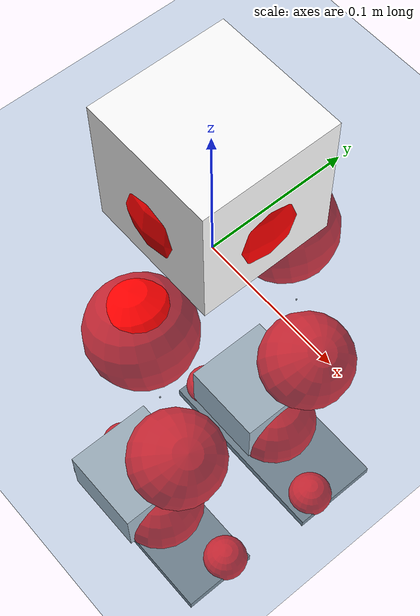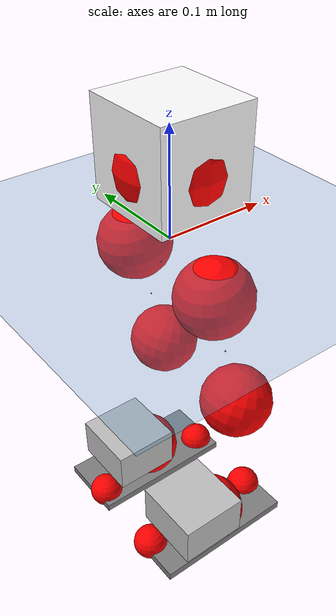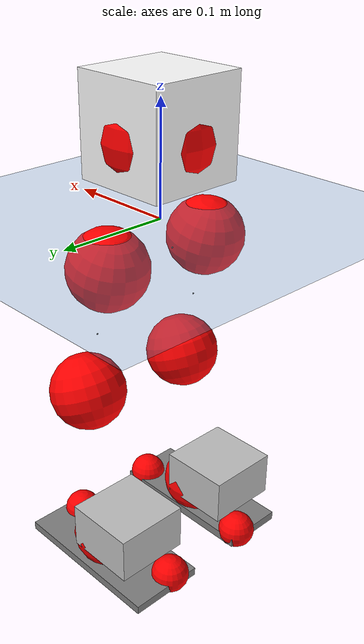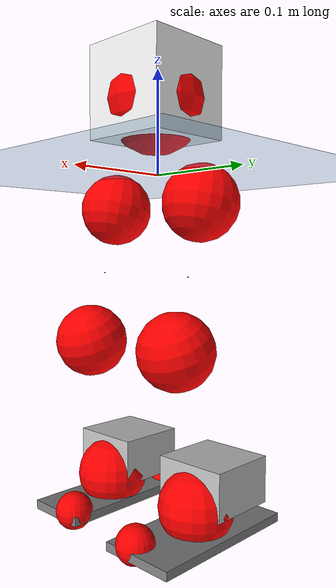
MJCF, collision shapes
<mujoco model="pi_12dof_release_v1">
  <compiler angle="radian" assetdir="assets" balanceinertia="true" inertiafromgeom="false"/>

  <option timestep="0.005" density="1.2" viscosity="2e-05"/>

  <size nkey="1"/>

  <visual>
    <quality shadowsize="8192"/>
    <map shadowclip="0.5"/>
  </visual>

  <default>
    <default class="/">
      <joint armature="0.01" damping="0.01" frictionloss="0.01"/>
      <geom contype="0" conaffinity="0" group="1" solref="-1000 -80"/>
      <site size="0.01 0.005 0.005" group="5"/>
      <general forcelimited="true" biastype="affine" gainprm="20" biasprm="0 -20 -0.5"/>
      <default class="foot">
        <geom size="0.0845 0.036 0.005" type="box" condim="6" group="4" priority="1" friction="0.9 0.2 0.2" solimp="0.015 1 0.005"/>
      </default>
      <default class="reward_collision_sphere">
        <geom group="5" rgba="1 0 0 1"/>
      </default>
    </default>
  </default>

  <asset>
    <texture type="skybox" colorspace="auto" name="//unnamed_texture_0" builtin="gradient" rgb1="0.95 0.95 0.95" rgb2="0.95 0.95 0.95" width="100" height="600"/>
    <texture type="2d" colorspace="auto" name="texplane" builtin="checker" rgb1="0.345 0.575 0.748" rgb2="0.345 0.575 0.748" markrgb="1 1 1" width="512" height="512"/>
    <material name="MatPlane" class="/" texture="texplane" texuniform="true" texrepeat="2 2" specular="0.9"/>
    <mesh name="baselink_1" class="/" file="baselink_1.STL"/>
    <mesh name="r_hip_pitch_link" class="/" file="r_hip_pitch_link.STL"/>
    <mesh name="r_hip_roll_link" class="/" file="r_hip_roll_link.STL"/>
    <mesh name="r_thigh_link" class="/" file="r_thigh_link.STL"/>
    <mesh name="r_calf_link" class="/" file="r_calf_link.STL"/>
    <mesh name="r_ankle_pitch_link" class="/" file="r_ankle_pitch_link.STL"/>
    <mesh name="r_ankle_roll_link" class="/" file="r_ankle_roll_link.STL"/>
    <mesh name="l_hip_pitch_link" class="/" file="l_hip_pitch_link.STL"/>
    <mesh name="l_hip_roll_link" class="/" file="l_hip_roll_link.STL"/>
    <mesh name="l_thigh_link" class="/" file="l_thigh_link.STL"/>
    <mesh name="l_calf_link" class="/" file="l_calf_link.STL"/>
    <mesh name="l_ankle_pitch_link" class="/" file="l_ankle_pitch_link.STL"/>
    <mesh name="l_ankle_roll_link" class="/" file="l_ankle_roll_link.STL"/>
  </asset>

  <worldbody>
    <geom name="floor" class="/" size="100 100 0.125" type="plane" group="0" material="MatPlane"/>
    <light name="toplight_shadow" class="/" pos="0 0 5" dir="0.0990148 0.0990148 -0.990148" type="directional" ambient="0.04 0.04 0.04" diffuse="0.55 0.55 0.55" specular="0.12 0.12 0.12"/>
    <light name="toplight_fill" class="/" pos="0 0 5" dir="0.0990148 0.0990148 -0.990148" type="directional" castshadow="false" ambient="0.04 0.04 0.04" diffuse="0.3 0.3 0.3" specular="0.08 0.08 0.08"/>
    <body name="trunk" pos="0.00247143 -0.000538035 0.000502313" quat="0.999999 -0.000276724 3.63339e-07 0.00107458">
      <inertial pos="-0.000206563 -0.00148339 0.0382565" quat="0.694824 0.00932351 0.00786308 0.719076" mass="1.42556" diaginertia="0.00785074 0.00194145 0.0031902"/>
      <joint name="//unnamed_joint_0" type="free"/>
      <geom name="//unnamed_geom_1" class="/" type="mesh" density="0" rgba="1 1 1 1" mesh="baselink_1"/>
      <geom name="//unnamed_geom_2" class="/" size="0.0441456 0.0441456 0.0441456" pos="0 0 0.0762027" type="box" rgba="1 1 1 1"/>
      <geom name="//unnamed_geom_3" class="reward_collision_sphere" size="0.0485602" pos="0 0 0.0666774"/>
      <site name="imu" class="/" pos="-0.00273962 -0.000344068 0.0105088" size="0.00882912"/>
      <camera name="track" class="/" pos="0 -1.47428 0" quat="0.707107 0.707107 0 0" mode="trackcom"/>
      <camera name="ego_camera" class="/" pos="0.0719298 0 0.171456" quat="-0.5 -0.5 0.5 0.5"/>
      <body name="r_hip_pitch_link" pos="-0.000128561 -0.0159129 -0.0315803" quat="0.992185 -6.06169e-05 -0.124774 0.000473022">
        <inertial pos="0.000253762 -0.0427632 -0.000234723" quat="-0.0179627 0.707442 -0.027706 0.706" mass="0.254081" diaginertia="9.00307e-05 2.10966e-05 6.50111e-05"/>
        <joint name="r_hip_pitch_joint" class="/" pos="0 0 0" axis="0.00261444 -0.999989 0.00377559" range="-1.74181 1.25034" armature="0.00919834" damping="0.0213349" frictionloss="0.00934224"/>
        <geom name="//unnamed_geom_4" class="/" type="mesh" density="0" rgba="0.75294 0.75294 0.75294 1" mesh="r_hip_pitch_link"/>
        <geom name="//unnamed_geom_5" class="/" size="0.000441456 0.000441456 0.000441456" type="box" rgba="0.75294 0.75294 0.75294 1"/>
        <body name="r_hip_roll_link" pos="0.000124746 -0.0405499 0.000631429" quat="1 -0.00079558 -8.52247e-05 -0.000164297">
          <inertial pos="0.000131546 -0.000845381 -0.0606912" quat="0.705991 -0.079443 -0.0827379 0.698871" mass="0.262128" diaginertia="0.000266141 6.01097e-05 0.000102444"/>
          <joint name="r_hip_roll_joint" class="/" pos="0 0 0" axis="-0.999982 -0.00513559 -0.00313039" stiffness="0.00190235" range="-0.102717 0.47609" armature="0.00919786" damping="0" frictionloss="0.00958071"/>
          <geom name="//unnamed_geom_6" class="/" type="mesh" density="0" rgba="0.75294 0.75294 0.75294 1" mesh="r_hip_roll_link"/>
          <geom name="//unnamed_geom_7" class="/" size="0.000441456 0.000441456 0.000441456" type="box" rgba="0.75294 0.75294 0.75294 1"/>
          <geom name="//unnamed_geom_8" class="reward_collision_sphere" size="0.0353165"/>
          <body name="r_thigh_link" pos="-0.00143842 -0.00142051 -0.0649255" quat="1 -7.74949e-05 0.000105168 -0.00012332">
            <inertial pos="-0.0012039 0.0010862 -0.0444551" quat="0.739414 0.673244 -0.00202463 0.00240606" mass="0.0775158" diaginertia="0.000104282 2.139e-05 4.62388e-05"/>
            <joint name="r_thigh_joint" class="/" pos="0 0 0" axis="0.000677992 -0.00285683 -0.999996" range="-0.330951 0.597191" armature="0.00876457" damping="0.00075255" frictionloss="0.00773536"/>
            <geom name="//unnamed_geom_9" class="/" type="mesh" density="0" rgba="0.75294 0.75294 0.75294 1" mesh="r_thigh_link"/>
            <geom name="//unnamed_geom_10" class="/" size="0.000441456 0.000441456 0.000441456" type="box" rgba="0.75294 0.75294 0.75294 1"/>
            <body name="r_calf_link" pos="-0.00142053 -0.00199975 -0.0692991" quat="0.947548 -0.00056886 0.319613 -0.000225311">
              <inertial pos="-0.000808107 -0.00261393 -0.0661017" quat="0.999905 -0.0108359 -0.000188845 0.00847657" mass="0.555286" diaginertia="0.00281183 0.000761329 0.000135827"/>
              <joint name="r_calf_joint" class="/" pos="0 0 0" axis="0.00387969 -0.999983 0.00437224" range="-1.60247 0.639594" armature="0.00888415" damping="0.00659058" frictionloss="0.00939523"/>
              <geom name="//unnamed_geom_11" class="/" type="mesh" density="0" rgba="0.75294 0.75294 0.75294 1" mesh="r_calf_link"/>
              <geom name="//unnamed_geom_12" class="/" size="0.000441456 0.000441456 0.000441456" type="box" rgba="0.75294 0.75294 0.75294 1"/>
              <geom name="//unnamed_geom_13" class="reward_collision_sphere" size="0.0353165"/>
              <body name="r_ankle_pitch_link" pos="-0.000417736 -0.00168798 -0.13359" quat="0.980037 -2.9056e-05 -0.198816 5.85422e-07">
                <inertial pos="0.00459366 0.00137369 -0.000786099" quat="0.00393442 0.705373 -0.00159419 0.708823" mass="0.122373" diaginertia="0.000249338 4.91601e-05 9.64693e-05"/>
                <joint name="r_ankle_pitch_joint" class="/" pos="0 0 0" axis="-0.0102042 -0.999948 -0.000323116" range="-1.31059 0.496961" armature="0.00903883" damping="0.000835746" frictionloss="0.00886218"/>
                <geom name="//unnamed_geom_14" class="/" type="mesh" density="0" rgba="0.75294 0.75294 0.75294 1" mesh="r_ankle_pitch_link"/>
                <geom name="//unnamed_geom_15" class="/" size="0.0344336 0.0353165 0.0220728" type="box" rgba="0.75294 0.75294 0.75294 1"/>
                <body name="r_ankle_roll_link" pos="0.0726298 0.00179952 0.000956592" quat="1 -7.70522e-05 -0.000177601 0.000142249">
                  <inertial pos="-0.0226456 0.000751016 -0.0141625" quat="0.551745 0.435794 0.437142 0.560864" mass="0.355709" diaginertia="0.0009199 0.000224366 0.000219225"/>
                  <joint name="r_ankle_roll_joint" class="/" pos="0 0 0" axis="-0.999916 -0.0121733 -0.00445019" range="-0.19459 0.16289" armature="0.00979392" damping="0.0101542" frictionloss="0.008944"/>
                  <geom name="//unnamed_geom_16" class="/" type="mesh" density="0" rgba="0.75294 0.75294 0.75294 1" mesh="r_ankle_roll_link"/>
                  <geom name="//unnamed_geom_17" class="/" type="mesh" rgba="0.75294 0.75294 0.75294 1" mesh="r_ankle_roll_link"/>
                  <geom name="right_foot" class="foot" size="0.0748876 0.0303259 0.00431861" pos="-0.0489122 0 -0.0419115"/>
                  <geom name="//unnamed_geom_19" class="reward_collision_sphere" size="0.0353165" pos="-0.0479532 0 -0.0190507"/>
                  <geom name="//unnamed_geom_20" class="reward_collision_sphere" size="0.0176582" pos="0.014386 0.0147428 -0.0381014"/>
                  <geom name="//unnamed_geom_21" class="reward_collision_sphere" size="0.0176582" pos="-0.115088 0.0147428 -0.0381014"/>
                  <site name="right_foot" class="foot" pos="-0.0489122 0 -0.0419115" size="0.00882912"/>
                </body>
              </body>
            </body>
          </body>
        </body>
      </body>
      <body name="l_hip_pitch_link" pos="-3.89899e-05 0.0167886 -0.0322066" quat="0.992204 -0.00012005 -0.124626 7.89535e-06">
        <inertial pos="-0.000105673 0.0418767 -0.00118571" quat="-0.0317016 0.70754 0.039608 0.70485" mass="0.273676" diaginertia="0.000104004 2.27201e-05 8.04449e-05"/>
        <joint name="l_hip_pitch_joint" class="/" pos="0 0 0" axis="0.0120694 0.999926 0.00147136" range="-1.26747 1.7566" armature="0.00873546" damping="0.00759042" frictionloss="0.00892777"/>
        <geom name="//unnamed_geom_22" class="/" type="mesh" density="0" rgba="0.75294 0.75294 0.75294 1" mesh="l_hip_pitch_link"/>
        <geom name="//unnamed_geom_23" class="/" size="0.000441456 0.000441456 0.000441456" type="box" rgba="0.75294 0.75294 0.75294 1"/>
        <body name="l_hip_roll_link" pos="0.000396699 0.0394379 0.00220403" quat="1 6.22766e-05 -0.000131143 -2.36801e-05">
          <inertial pos="-0.00124428 4.47699e-05 -0.0585573" quat="0.700165 -0.0710722 -0.0754793 0.706414" mass="0.271918" diaginertia="0.000268088 5.95428e-05 0.000100331"/>
          <joint name="l_hip_roll_joint" class="/" pos="0 0 0" axis="-0.999992 0.00363595 -0.00158151" range="-0.505643 0.145919" armature="0.00913896" damping="0.00454364" frictionloss="0.00927469"/>
          <geom name="//unnamed_geom_24" class="/" type="mesh" density="0" rgba="0.75294 0.75294 0.75294 1" mesh="l_hip_roll_link"/>
          <geom name="//unnamed_geom_25" class="/" size="0.000441456 0.000441456 0.000441456" type="box" rgba="0.75294 0.75294 0.75294 1"/>
          <geom name="//unnamed_geom_26" class="reward_collision_sphere" size="0.0353165"/>
          <body name="l_thigh_link" pos="5.59511e-05 -0.000160865 -0.0681607" quat="1 -6.52317e-05 0.000152068 9.97794e-05">
            <inertial pos="0.0013838 0.000988983 -0.0454998" quat="0.674941 0.737871 0.000369086 0.000539339" mass="0.076505" diaginertia="0.000100178 2.04543e-05 4.34664e-05"/>
            <joint name="l_thigh_joint" class="/" pos="0 0 0" axis="0.002235 -0.00308493 -0.999993" range="-0.596626 0.314957" armature="0.00870019" damping="0" frictionloss="0.00873897"/>
            <geom name="//unnamed_geom_27" class="/" type="mesh" density="0" rgba="0.75294 0.75294 0.75294 1" mesh="l_thigh_link"/>
            <geom name="//unnamed_geom_28" class="/" size="0.000441456 0.000441456 0.000441456" type="box" rgba="0.75294 0.75294 0.75294 1"/>
            <body name="l_calf_link" pos="-0.000701481 0.000579779 -0.0663639" quat="0.947772 -0.0010451 0.318946 -0.000431067">
              <inertial pos="0.00273161 0.00310984 -0.0691454" quat="0.999995 0.000609538 -0.00260663 0.00193051" mass="0.56125" diaginertia="0.00287469 0.000762733 0.000136333"/>
              <joint name="l_calf_joint" class="/" pos="0 0 0" axis="0.000249514 1 6.34706e-05" stiffness="0.00225749" range="-0.652233 1.6499" armature="0.00842242" damping="0.00800676" frictionloss="0.00803554"/>
              <geom name="//unnamed_geom_29" class="/" type="mesh" density="0" rgba="0.75294 0.75294 0.75294 1" mesh="l_calf_link"/>
              <geom name="//unnamed_geom_30" class="/" size="0.000441456 0.000441456 0.000441456" type="box" rgba="0.75294 0.75294 0.75294 1"/>
              <geom name="//unnamed_geom_31" class="reward_collision_sphere" size="0.0353165"/>
              <body name="l_ankle_pitch_link" pos="0.00148114 0.000289736 -0.135729" quat="0.980052 -3.57768e-05 -0.198742 4.79859e-05">
                <inertial pos="0.00474309 -0.000667402 8.92742e-05" quat="-0.000869421 0.707143 0.00319537 0.707062" mass="0.118211" diaginertia="0.000250003 4.86056e-05 9.4079e-05"/>
                <joint name="l_ankle_pitch_joint" class="/" pos="0 0 0" axis="-0.000538838 1 0.000667956" range="-0.505178 1.31208" armature="0.00887087" damping="0.0116877" frictionloss="0.00853315"/>
                <geom name="//unnamed_geom_32" class="/" type="mesh" density="0" rgba="0.75294 0.75294 0.75294 1" mesh="l_ankle_pitch_link"/>
                <geom name="//unnamed_geom_33" class="/" size="0.0344336 0.0353165 0.0220728" type="box" rgba="0.75294 0.75294 0.75294 1"/>
                <body name="l_ankle_roll_link" pos="0.0723355 0.000606965 -0.000569119" quat="1 -0.000161347 -0.000130569 0.000139164">
                  <inertial pos="-0.0249433 0.000120045 -0.0139249" quat="0.559747 0.430896 0.434415 0.558834" mass="0.353588" diaginertia="0.00090497 0.000223553 0.000226018"/>
                  <joint name="l_ankle_roll_joint" class="/" pos="0 0 0" axis="-0.999941 0.00364184 -0.0102713" range="-0.156147 0.141377" armature="0.00925579" damping="0.0143013" frictionloss="0.00920393"/>
                  <geom name="//unnamed_geom_34" class="/" type="mesh" density="0" rgba="0.75294 0.75294 0.75294 1" mesh="l_ankle_roll_link"/>
                  <geom name="//unnamed_geom_35" class="/" type="mesh" rgba="0.75294 0.75294 0.75294 1" mesh="l_ankle_roll_link"/>
                  <geom name="left_foot" class="foot" size="0.0778244 0.0360898 0.00404994" pos="-0.0489122 0 -0.0419115"/>
                  <geom name="//unnamed_geom_37" class="reward_collision_sphere" size="0.0353165" pos="-0.0479532 0 -0.0190507"/>
                  <geom name="//unnamed_geom_38" class="reward_collision_sphere" size="0.0176582" pos="0.014386 -0.0147428 -0.0381014"/>
                  <geom name="//unnamed_geom_39" class="reward_collision_sphere" size="0.0176582" pos="-0.115088 -0.0147428 -0.0381014"/>
                  <site name="left_foot" class="foot" pos="-0.0489122 0 -0.0419115" size="0.00882912"/>
                </body>
              </body>
            </body>
          </body>
        </body>
      </body>
    </body>
  </worldbody>

  <contact>
    <pair class="/" geom1="floor" geom2="right_foot" name="//unnamed_contact_1"/>
    <pair class="/" geom1="floor" geom2="left_foot" name="//unnamed_contact_0"/>
  </contact>

  <actuator>
    <general name="r_hip_pitch_joint" class="/" joint="r_hip_pitch_joint" forcerange="-18.7144 18.7144" gainprm="17.8511" biasprm="0 -17.8511 -0.438355"/>
    <general name="r_hip_roll_joint" class="/" joint="r_hip_roll_joint" forcerange="-18.761 18.761" gainprm="17.8511" biasprm="0 -17.8511 -0.438355"/>
    <general name="r_thigh_joint" class="/" joint="r_thigh_joint" forcerange="-18.6311 18.6311" gainprm="17.8511" biasprm="0 -17.8511 -0.438355"/>
    <general name="r_calf_joint" class="/" joint="r_calf_joint" forcerange="-20.2141 20.2141" gainprm="17.8511" biasprm="0 -17.8511 -0.438355"/>
    <general name="r_ankle_pitch_joint" class="/" joint="r_ankle_pitch_joint" forcerange="-18.2215 18.2215" gainprm="17.8511" biasprm="0 -17.8511 -0.438355"/>
    <general name="r_ankle_roll_joint" class="/" joint="r_ankle_roll_joint" forcerange="-17.0505 17.0505" gainprm="17.8511" biasprm="0 -17.8511 -0.438355"/>
    <general name="l_hip_pitch_joint" class="/" joint="l_hip_pitch_joint" forcerange="-18.6832 18.6832" gainprm="17.8511" biasprm="0 -17.8511 -0.438355"/>
    <general name="l_hip_roll_joint" class="/" joint="l_hip_roll_joint" forcerange="-18.6574 18.6574" gainprm="17.8511" biasprm="0 -17.8511 -0.438355"/>
    <general name="l_thigh_joint" class="/" joint="l_thigh_joint" forcerange="-18.3447 18.3447" gainprm="17.8511" biasprm="0 -17.8511 -0.438355"/>
    <general name="l_calf_joint" class="/" joint="l_calf_joint" forcerange="-18.4482 18.4482" gainprm="17.8511" biasprm="0 -17.8511 -0.438355"/>
    <general name="l_ankle_pitch_joint" class="/" joint="l_ankle_pitch_joint" forcerange="-18.3709 18.3709" gainprm="17.8511" biasprm="0 -17.8511 -0.438355"/>
    <general name="l_ankle_roll_joint" class="/" joint="l_ankle_roll_joint" forcerange="-18.7833 18.7833" gainprm="17.8511" biasprm="0 -17.8511 -0.438355"/>
  </actuator>

  <sensor>
    <gyro site="imu" name="imu_angular_velocity"/>
    <velocimeter site="imu" name="imu_linear_velocity"/>
    <framelinvel objtype="site" objname="left_foot" name="left_foot_global_linear_velocity"/>
    <framelinvel objtype="site" objname="right_foot" name="right_foot_global_linear_velocity"/>
  </sensor>

  <keyframe>
    <key name="home" qpos="0 0 0.291 1 0 0 0 0.4 0 0 -0.8 0.4 0 -0.4 0 0 0.8 -0.4 0"/>
  </keyframe>
</mujoco>
